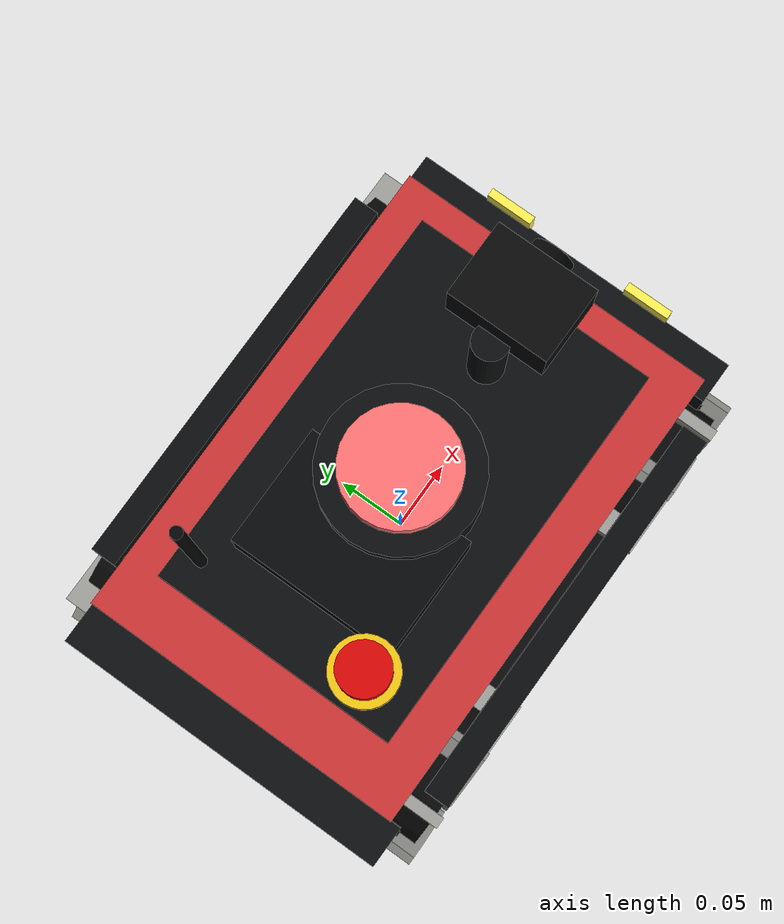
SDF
<?xml version="1.0"?>
<sdf version="1.8">
  <model name="mecanum_robot" xmlns:ignition="http://ignitionrobotics.org/schema">
    <pose>0 0 0 0 0 0</pose>

    <link name="base_link">
      <inertial>
        <pose>0 0 0.105 0 0 0</pose>
        <mass>2.2</mass>
        <inertia>
          <ixx>0.025</ixx>
          <ixy>0</ixy>
          <ixz>0</ixz>
          <iyy>0.035</iyy>
          <iyz>0</iyz>
          <izz>0.045</izz>
        </inertia>
      </inertial>

      <collision name="base_collision">
        <pose>0 0 0.105 0 0 0</pose>
        <geometry>
          <box>
            <size>0.30 0.20 0.10</size>
          </box>
        </geometry>
      </collision>

      <visual name="chassis_visual">
        <pose>0 0 0.105 0 0 0</pose>
        <geometry>
          <box>
            <size>0.34 0.23 0.09</size>
          </box>
        </geometry>
        <material>
          <ambient>0.8 0.2 0.2 1.0</ambient>
          <diffuse>0.8 0.2 0.2 1.0</diffuse>
          <specular>0.35 0.35 0.35 1.0</specular>
        </material>
      </visual>

      <visual name="top_panel_visual">
        <pose>0.015 0 0.157 0 0 0</pose>
        <geometry>
          <box>
            <size>0.23 0.145 0.018</size>
          </box>
        </geometry>
        <material>
          <ambient>1.0 0.45 0.45 1.0</ambient>
          <diffuse>1.0 0.45 0.45 1.0</diffuse>
          <specular>0.45 0.45 0.45 1.0</specular>
        </material>
      </visual>

      <visual name="lower_deck_visual">
        <pose>0 0 0.062 0 0 0</pose>
        <geometry>
          <box>
            <size>0.370 0.248 0.018</size>
          </box>
        </geometry>
        <material>
          <ambient>0.030 0.034 0.038 1.0</ambient>
          <diffuse>0.030 0.034 0.038 1.0</diffuse>
          <specular>0.35 0.35 0.35 1.0</specular>
        </material>
      </visual>

      <visual name="upper_deck_visual">
        <pose>0.005 0 0.174 0 0 0</pose>
        <geometry>
          <box>
            <size>0.275 0.172 0.014</size>
          </box>
        </geometry>
        <material>
          <ambient>0.040 0.045 0.050 1.0</ambient>
          <diffuse>0.040 0.045 0.050 1.0</diffuse>
          <specular>0.40 0.40 0.40 1.0</specular>
        </material>
      </visual>

      <visual name="front_left_standoff_visual">
        <pose>0.115 0.072 0.124 0 0 0</pose>
        <geometry>
          <cylinder>
            <radius>0.006</radius>
            <length>0.095</length>
          </cylinder>
        </geometry>
        <material>
          <ambient>0.72 0.72 0.68 1.0</ambient>
          <diffuse>0.72 0.72 0.68 1.0</diffuse>
          <specular>0.65 0.65 0.65 1.0</specular>
        </material>
      </visual>

      <visual name="front_right_standoff_visual">
        <pose>0.115 -0.072 0.124 0 0 0</pose>
        <geometry>
          <cylinder>
            <radius>0.006</radius>
            <length>0.095</length>
          </cylinder>
        </geometry>
        <material>
          <ambient>0.72 0.72 0.68 1.0</ambient>
          <diffuse>0.72 0.72 0.68 1.0</diffuse>
          <specular>0.65 0.65 0.65 1.0</specular>
        </material>
      </visual>

      <visual name="rear_left_standoff_visual">
        <pose>-0.115 0.072 0.124 0 0 0</pose>
        <geometry>
          <cylinder>
            <radius>0.006</radius>
            <length>0.095</length>
          </cylinder>
        </geometry>
        <material>
          <ambient>0.72 0.72 0.68 1.0</ambient>
          <diffuse>0.72 0.72 0.68 1.0</diffuse>
          <specular>0.65 0.65 0.65 1.0</specular>
        </material>
      </visual>

      <visual name="rear_right_standoff_visual">
        <pose>-0.115 -0.072 0.124 0 0 0</pose>
        <geometry>
          <cylinder>
            <radius>0.006</radius>
            <length>0.095</length>
          </cylinder>
        </geometry>
        <material>
          <ambient>0.72 0.72 0.68 1.0</ambient>
          <diffuse>0.72 0.72 0.68 1.0</diffuse>
          <specular>0.65 0.65 0.65 1.0</specular>
        </material>
      </visual>

      <visual name="electronics_box_visual">
        <pose>-0.050 0 0.198 0 0 0</pose>
        <geometry>
          <box>
            <size>0.082 0.116 0.034</size>
          </box>
        </geometry>
        <material>
          <ambient>0.020 0.026 0.032 1.0</ambient>
          <diffuse>0.020 0.026 0.032 1.0</diffuse>
          <specular>0.45 0.45 0.45 1.0</specular>
        </material>
      </visual>

      <visual name="battery_pack_visual">
        <pose>-0.120 0 0.088 0 0 0</pose>
        <geometry>
          <box>
            <size>0.078 0.114 0.036</size>
          </box>
        </geometry>
        <material>
          <ambient>0.020 0.055 0.095 1.0</ambient>
          <diffuse>0.020 0.055 0.095 1.0</diffuse>
          <specular>0.35 0.35 0.35 1.0</specular>
        </material>
      </visual>

      <visual name="emergency_stop_base_visual">
        <pose>-0.108 -0.052 0.221 0 0 0</pose>
        <geometry>
          <cylinder>
            <radius>0.022</radius>
            <length>0.012</length>
          </cylinder>
        </geometry>
        <material>
          <ambient>0.95 0.78 0.08 1.0</ambient>
          <diffuse>0.95 0.78 0.08 1.0</diffuse>
          <specular>0.35 0.35 0.35 1.0</specular>
        </material>
      </visual>

      <visual name="emergency_stop_button_visual">
        <pose>-0.108 -0.052 0.238 0 0 0</pose>
        <geometry>
          <cylinder>
            <radius>0.017</radius>
            <length>0.020</length>
          </cylinder>
        </geometry>
        <material>
          <ambient>0.85 0.025 0.020 1.0</ambient>
          <diffuse>0.85 0.025 0.020 1.0</diffuse>
          <specular>0.35 0.35 0.35 1.0</specular>
        </material>
      </visual>

      <visual name="front_bumper_visual">
        <pose>0.185 0 0.082 0 0 0</pose>
        <geometry>
          <box>
            <size>0.030 0.245 0.045</size>
          </box>
        </geometry>
        <material>
          <ambient>0.04 0.05 0.055 1.0</ambient>
          <diffuse>0.04 0.05 0.055 1.0</diffuse>
          <specular>0.25 0.25 0.25 1.0</specular>
        </material>
      </visual>

      <visual name="rear_bumper_visual">
        <pose>-0.185 0 0.082 0 0 0</pose>
        <geometry>
          <box>
            <size>0.030 0.245 0.045</size>
          </box>
        </geometry>
        <material>
          <ambient>0.04 0.05 0.055 1.0</ambient>
          <diffuse>0.04 0.05 0.055 1.0</diffuse>
          <specular>0.25 0.25 0.25 1.0</specular>
        </material>
      </visual>

      <visual name="left_side_rail_visual">
        <pose>0 0.130 0.105 0 0 0</pose>
        <geometry>
          <box>
            <size>0.285 0.018 0.052</size>
          </box>
        </geometry>
        <material>
          <ambient>0.035 0.04 0.045 1.0</ambient>
          <diffuse>0.035 0.04 0.045 1.0</diffuse>
        </material>
      </visual>

      <visual name="right_side_rail_visual">
        <pose>0 -0.130 0.105 0 0 0</pose>
        <geometry>
          <box>
            <size>0.285 0.018 0.052</size>
          </box>
        </geometry>
        <material>
          <ambient>0.035 0.04 0.045 1.0</ambient>
          <diffuse>0.035 0.04 0.045 1.0</diffuse>
        </material>
      </visual>

      <visual name="front_left_light_visual">
        <pose>0.202 0.055 0.105 0 0 0</pose>
        <geometry>
          <box>
            <size>0.006 0.034 0.020</size>
          </box>
        </geometry>
        <material>
          <ambient>1.0 0.95 0.32 1.0</ambient>
          <diffuse>1.0 0.95 0.32 1.0</diffuse>
          <emissive>0.65 0.55 0.10 1.0</emissive>
        </material>
      </visual>

      <visual name="front_right_light_visual">
        <pose>0.202 -0.055 0.105 0 0 0</pose>
        <geometry>
          <box>
            <size>0.006 0.034 0.020</size>
          </box>
        </geometry>
        <material>
          <ambient>1.0 0.95 0.32 1.0</ambient>
          <diffuse>1.0 0.95 0.32 1.0</diffuse>
          <emissive>0.65 0.55 0.10 1.0</emissive>
        </material>
      </visual>

      <visual name="camera_mast_visual">
        <pose>0.090 0 0.205 0 0 0</pose>
        <geometry>
          <cylinder>
            <radius>0.012</radius>
            <length>0.075</length>
          </cylinder>
        </geometry>
        <material>
          <ambient>0.04 0.045 0.05 1.0</ambient>
          <diffuse>0.04 0.045 0.05 1.0</diffuse>
        </material>
      </visual>

      <visual name="camera_body_visual">
        <pose>0.120 0 0.247 0 0 0</pose>
        <geometry>
          <box>
            <size>0.052 0.070 0.034</size>
          </box>
        </geometry>
        <material>
          <ambient>0.03 0.03 0.035 1.0</ambient>
          <diffuse>0.03 0.03 0.035 1.0</diffuse>
          <specular>0.45 0.45 0.45 1.0</specular>
        </material>
      </visual>

      <visual name="camera_lens_visual">
        <pose>0.150 0 0.247 0 1.5708 0</pose>
        <geometry>
          <cylinder>
            <radius>0.014</radius>
            <length>0.008</length>
          </cylinder>
        </geometry>
        <material>
          <ambient>0.01 0.012 0.016 1.0</ambient>
          <diffuse>0.01 0.012 0.016 1.0</diffuse>
          <specular>0.8 0.8 0.8 1.0</specular>
        </material>
      </visual>

      <visual name="antenna_visual">
        <pose>-0.110 0.070 0.235 0 0 0</pose>
        <geometry>
          <cylinder>
            <radius>0.004</radius>
            <length>0.145</length>
          </cylinder>
        </geometry>
        <material>
          <ambient>0.015 0.015 0.015 1.0</ambient>
          <diffuse>0.015 0.015 0.015 1.0</diffuse>
        </material>
      </visual>
    </link>

    <link name="base_scan">
      <inertial>
        <pose>0 0 0.205 0 0 0</pose>
        <mass>0.12</mass>
        <inertia>
          <ixx>0.0001</ixx>
          <ixy>0</ixy>
          <ixz>0</ixz>
          <iyy>0.0001</iyy>
          <iyz>0</iyz>
          <izz>0.0001</izz>
        </inertia>
      </inertial>

      <collision name="lidar_collision">
        <pose>0 0 0.205 0 0 0</pose>
        <geometry>
          <cylinder>
            <radius>0.046</radius>
            <length>0.048</length>
          </cylinder>
        </geometry>
      </collision>

      <visual name="lidar_body_visual">
        <pose>0 0 0.205 0 0 0</pose>
        <geometry>
          <cylinder>
            <radius>0.052</radius>
            <length>0.044</length>
          </cylinder>
        </geometry>
        <material>
          <ambient>0.04 0.045 0.05 1.0</ambient>
          <diffuse>0.04 0.045 0.05 1.0</diffuse>
          <specular>0.35 0.35 0.35 1.0</specular>
        </material>
      </visual>

      <visual name="lidar_top_visual">
        <pose>0 0 0.232 0 0 0</pose>
        <geometry>
          <cylinder>
            <radius>0.038</radius>
            <length>0.012</length>
          </cylinder>
        </geometry>
        <material>
          <ambient>1.0 0.45 0.45 1.0</ambient>
          <diffuse>1.0 0.45 0.45 1.0</diffuse>
          <specular>0.45 0.45 0.45 1.0</specular>
        </material>
      </visual>

      <sensor name="frontier_scan" type="gpu_lidar">
        <always_on>true</always_on>
        <visualize>false</visualize>
        <pose>0 0 0.205 0 0 0</pose>
        <update_rate>10</update_rate>
        <topic>scan</topic>
        <gz_frame_id>base_scan</gz_frame_id>
        <lidar>
          <scan>
            <horizontal>
              <samples>360</samples>
              <resolution>1.0</resolution>
              <min_angle>0.0</min_angle>
              <max_angle>6.283185</max_angle>
            </horizontal>
          </scan>
          <range>
            <min>0.10</min>
            <max>4.5</max>
            <resolution>0.015</resolution>
          </range>
          <noise>
            <type>gaussian</type>
            <mean>0.0</mean>
            <stddev>0.01</stddev>
          </noise>
        </lidar>
      </sensor>
    </link>

    <link name="imu_link">
      <sensor name="mecanum_imu" type="imu">
        <always_on>true</always_on>
        <update_rate>100</update_rate>
        <topic>imu</topic>
      </sensor>
    </link>

    <link name="front_left_wheel">
      <pose>0.120 0.118 0.055 -1.5707 0 0</pose>
      <inertial>
        <mass>0.18</mass>
        <inertia>
          <ixx>0.00018</ixx>
          <ixy>0</ixy>
          <ixz>0</ixz>
          <iyy>0.00018</iyy>
          <iyz>0</iyz>
          <izz>0.00024</izz>
        </inertia>
      </inertial>
      <collision name="wheel_collision">
        <geometry>
          <cylinder>
            <radius>0.055</radius>
            <length>0.032</length>
          </cylinder>
        </geometry>
        <surface>
          <friction>
            <ode>
              <mu>1.0</mu>
              <mu2>0.0</mu2>
              <fdir1 ignition:expressed_in="base_link">1 -1 0</fdir1>
            </ode>
          </friction>
        </surface>
      </collision>
      <visual name="wheel_visual">
        <geometry>
          <cylinder>
            <radius>0.055</radius>
            <length>0.036</length>
          </cylinder>
        </geometry>
        <material>
          <ambient>0.025 0.025 0.025 1.0</ambient>
          <diffuse>0.025 0.025 0.025 1.0</diffuse>
          <specular>0.25 0.25 0.25 1.0</specular>
        </material>
      </visual>
      <visual name="hub_visual">
        <geometry>
          <cylinder>
            <radius>0.024</radius>
            <length>0.046</length>
          </cylinder>
        </geometry>
        <material>
          <ambient>0.48 0.48 0.46 1.0</ambient>
          <diffuse>0.48 0.48 0.46 1.0</diffuse>
          <specular>0.75 0.75 0.75 1.0</specular>
        </material>
      </visual>
      <visual name="roller_0_visual">
        <pose>0.046 0.000 0 0 0 0.7854</pose>
        <geometry>
          <box>
            <size>0.050 0.008 0.046</size>
          </box>
        </geometry>
        <material>
          <ambient>0.62 0.62 0.60 1.0</ambient>
          <diffuse>0.62 0.62 0.60 1.0</diffuse>
          <specular>0.85 0.85 0.85 1.0</specular>
        </material>
      </visual>
      <visual name="roller_1_visual">
        <pose>0.033 0.033 0 0 0 1.5708</pose>
        <geometry>
          <box>
            <size>0.050 0.008 0.046</size>
          </box>
        </geometry>
        <material>
          <ambient>0.62 0.62 0.60 1.0</ambient>
          <diffuse>0.62 0.62 0.60 1.0</diffuse>
          <specular>0.85 0.85 0.85 1.0</specular>
        </material>
      </visual>
      <visual name="roller_2_visual">
        <pose>0.000 0.046 0 0 0 2.3562</pose>
        <geometry>
          <box>
            <size>0.050 0.008 0.046</size>
          </box>
        </geometry>
        <material>
          <ambient>0.62 0.62 0.60 1.0</ambient>
          <diffuse>0.62 0.62 0.60 1.0</diffuse>
          <specular>0.85 0.85 0.85 1.0</specular>
        </material>
      </visual>
      <visual name="roller_3_visual">
        <pose>-0.033 0.033 0 0 0 3.1416</pose>
        <geometry>
          <box>
            <size>0.050 0.008 0.046</size>
          </box>
        </geometry>
        <material>
          <ambient>0.62 0.62 0.60 1.0</ambient>
          <diffuse>0.62 0.62 0.60 1.0</diffuse>
          <specular>0.85 0.85 0.85 1.0</specular>
        </material>
      </visual>
      <visual name="roller_4_visual">
        <pose>-0.046 0.000 0 0 0 3.9270</pose>
        <geometry>
          <box>
            <size>0.050 0.008 0.046</size>
          </box>
        </geometry>
        <material>
          <ambient>0.62 0.62 0.60 1.0</ambient>
          <diffuse>0.62 0.62 0.60 1.0</diffuse>
          <specular>0.85 0.85 0.85 1.0</specular>
        </material>
      </visual>
      <visual name="roller_5_visual">
        <pose>-0.033 -0.033 0 0 0 4.7124</pose>
        <geometry>
          <box>
            <size>0.050 0.008 0.046</size>
          </box>
        </geometry>
        <material>
          <ambient>0.62 0.62 0.60 1.0</ambient>
          <diffuse>0.62 0.62 0.60 1.0</diffuse>
          <specular>0.85 0.85 0.85 1.0</specular>
        </material>
      </visual>
      <visual name="roller_6_visual">
        <pose>0.000 -0.046 0 0 0 5.4978</pose>
        <geometry>
          <box>
            <size>0.050 0.008 0.046</size>
          </box>
        </geometry>
        <material>
          <ambient>0.62 0.62 0.60 1.0</ambient>
          <diffuse>0.62 0.62 0.60 1.0</diffuse>
          <specular>0.85 0.85 0.85 1.0</specular>
        </material>
      </visual>
      <visual name="roller_7_visual">
        <pose>0.033 -0.033 0 0 0 6.2832</pose>
        <geometry>
          <box>
            <size>0.050 0.008 0.046</size>
          </box>
        </geometry>
        <material>
          <ambient>0.62 0.62 0.60 1.0</ambient>
          <diffuse>0.62 0.62 0.60 1.0</diffuse>
          <specular>0.85 0.85 0.85 1.0</specular>
        </material>
      </visual>
    </link>

    <link name="front_right_wheel">
      <pose>0.120 -0.118 0.055 -1.5707 0 0</pose>
      <inertial>
        <mass>0.18</mass>
        <inertia>
          <ixx>0.00018</ixx>
          <ixy>0</ixy>
          <ixz>0</ixz>
          <iyy>0.00018</iyy>
          <iyz>0</iyz>
          <izz>0.00024</izz>
        </inertia>
      </inertial>
      <collision name="wheel_collision">
        <geometry>
          <cylinder>
            <radius>0.055</radius>
            <length>0.032</length>
          </cylinder>
        </geometry>
        <surface>
          <friction>
            <ode>
              <mu>1.0</mu>
              <mu2>0.0</mu2>
              <fdir1 ignition:expressed_in="base_link">1 1 0</fdir1>
            </ode>
          </friction>
        </surface>
      </collision>
      <visual name="wheel_visual">
        <geometry>
          <cylinder>
            <radius>0.055</radius>
            <length>0.036</length>
          </cylinder>
        </geometry>
        <material>
          <ambient>0.025 0.025 0.025 1.0</ambient>
          <diffuse>0.025 0.025 0.025 1.0</diffuse>
          <specular>0.25 0.25 0.25 1.0</specular>
        </material>
      </visual>
      <visual name="hub_visual">
        <geometry>
          <cylinder>
            <radius>0.024</radius>
            <length>0.046</length>
          </cylinder>
        </geometry>
        <material>
          <ambient>0.48 0.48 0.46 1.0</ambient>
          <diffuse>0.48 0.48 0.46 1.0</diffuse>
          <specular>0.75 0.75 0.75 1.0</specular>
        </material>
      </visual>
      <visual name="roller_0_visual">
        <pose>0.046 0.000 0 0 0 -0.7854</pose>
        <geometry>
          <box>
            <size>0.050 0.008 0.046</size>
          </box>
        </geometry>
        <material>
          <ambient>0.62 0.62 0.60 1.0</ambient>
          <diffuse>0.62 0.62 0.60 1.0</diffuse>
          <specular>0.85 0.85 0.85 1.0</specular>
        </material>
      </visual>
      <visual name="roller_1_visual">
        <pose>0.033 0.033 0 0 0 0.0000</pose>
        <geometry>
          <box>
            <size>0.050 0.008 0.046</size>
          </box>
        </geometry>
        <material>
          <ambient>0.62 0.62 0.60 1.0</ambient>
          <diffuse>0.62 0.62 0.60 1.0</diffuse>
          <specular>0.85 0.85 0.85 1.0</specular>
        </material>
      </visual>
      <visual name="roller_2_visual">
        <pose>0.000 0.046 0 0 0 0.7854</pose>
        <geometry>
          <box>
            <size>0.050 0.008 0.046</size>
          </box>
        </geometry>
        <material>
          <ambient>0.62 0.62 0.60 1.0</ambient>
          <diffuse>0.62 0.62 0.60 1.0</diffuse>
          <specular>0.85 0.85 0.85 1.0</specular>
        </material>
      </visual>
      <visual name="roller_3_visual">
        <pose>-0.033 0.033 0 0 0 1.5708</pose>
        <geometry>
          <box>
            <size>0.050 0.008 0.046</size>
          </box>
        </geometry>
        <material>
          <ambient>0.62 0.62 0.60 1.0</ambient>
          <diffuse>0.62 0.62 0.60 1.0</diffuse>
          <specular>0.85 0.85 0.85 1.0</specular>
        </material>
      </visual>
      <visual name="roller_4_visual">
        <pose>-0.046 0.000 0 0 0 2.3562</pose>
        <geometry>
          <box>
            <size>0.050 0.008 0.046</size>
          </box>
        </geometry>
        <material>
          <ambient>0.62 0.62 0.60 1.0</ambient>
          <diffuse>0.62 0.62 0.60 1.0</diffuse>
          <specular>0.85 0.85 0.85 1.0</specular>
        </material>
      </visual>
      <visual name="roller_5_visual">
        <pose>-0.033 -0.033 0 0 0 3.1416</pose>
        <geometry>
          <box>
            <size>0.050 0.008 0.046</size>
          </box>
        </geometry>
        <material>
          <ambient>0.62 0.62 0.60 1.0</ambient>
          <diffuse>0.62 0.62 0.60 1.0</diffuse>
          <specular>0.85 0.85 0.85 1.0</specular>
        </material>
      </visual>
      <visual name="roller_6_visual">
        <pose>0.000 -0.046 0 0 0 3.9270</pose>
        <geometry>
          <box>
            <size>0.050 0.008 0.046</size>
          </box>
        </geometry>
        <material>
          <ambient>0.62 0.62 0.60 1.0</ambient>
          <diffuse>0.62 0.62 0.60 1.0</diffuse>
          <specular>0.85 0.85 0.85 1.0</specular>
        </material>
      </visual>
      <visual name="roller_7_visual">
        <pose>0.033 -0.033 0 0 0 4.7124</pose>
        <geometry>
          <box>
            <size>0.050 0.008 0.046</size>
          </box>
        </geometry>
        <material>
          <ambient>0.62 0.62 0.60 1.0</ambient>
          <diffuse>0.62 0.62 0.60 1.0</diffuse>
          <specular>0.85 0.85 0.85 1.0</specular>
        </material>
      </visual>
    </link>

    <link name="back_left_wheel">
      <pose>-0.120 0.118 0.055 -1.5707 0 0</pose>
      <inertial>
        <mass>0.18</mass>
        <inertia>
          <ixx>0.00018</ixx>
          <ixy>0</ixy>
          <ixz>0</ixz>
          <iyy>0.00018</iyy>
          <iyz>0</iyz>
          <izz>0.00024</izz>
        </inertia>
      </inertial>
      <collision name="wheel_collision">
        <geometry>
          <cylinder>
            <radius>0.055</radius>
            <length>0.032</length>
          </cylinder>
        </geometry>
        <surface>
          <friction>
            <ode>
              <mu>1.0</mu>
              <mu2>0.0</mu2>
              <fdir1 ignition:expressed_in="base_link">1 1 0</fdir1>
            </ode>
          </friction>
        </surface>
      </collision>
      <visual name="wheel_visual">
        <geometry>
          <cylinder>
            <radius>0.055</radius>
            <length>0.036</length>
          </cylinder>
        </geometry>
        <material>
          <ambient>0.025 0.025 0.025 1.0</ambient>
          <diffuse>0.025 0.025 0.025 1.0</diffuse>
          <specular>0.25 0.25 0.25 1.0</specular>
        </material>
      </visual>
      <visual name="hub_visual">
        <geometry>
          <cylinder>
            <radius>0.024</radius>
            <length>0.046</length>
          </cylinder>
        </geometry>
        <material>
          <ambient>0.48 0.48 0.46 1.0</ambient>
          <diffuse>0.48 0.48 0.46 1.0</diffuse>
          <specular>0.75 0.75 0.75 1.0</specular>
        </material>
      </visual>
      <visual name="roller_0_visual">
        <pose>0.046 0.000 0 0 0 -0.7854</pose>
        <geometry>
          <box>
            <size>0.050 0.008 0.046</size>
          </box>
        </geometry>
        <material>
          <ambient>0.62 0.62 0.60 1.0</ambient>
          <diffuse>0.62 0.62 0.60 1.0</diffuse>
          <specular>0.85 0.85 0.85 1.0</specular>
        </material>
      </visual>
      <visual name="roller_1_visual">
        <pose>0.033 0.033 0 0 0 0.0000</pose>
        <geometry>
          <box>
            <size>0.050 0.008 0.046</size>
          </box>
        </geometry>
        <material>
          <ambient>0.62 0.62 0.60 1.0</ambient>
          <diffuse>0.62 0.62 0.60 1.0</diffuse>
          <specular>0.85 0.85 0.85 1.0</specular>
        </material>
      </visual>
      <visual name="roller_2_visual">
        <pose>0.000 0.046 0 0 0 0.7854</pose>
        <geometry>
          <box>
            <size>0.050 0.008 0.046</size>
          </box>
        </geometry>
        <material>
          <ambient>0.62 0.62 0.60 1.0</ambient>
          <diffuse>0.62 0.62 0.60 1.0</diffuse>
          <specular>0.85 0.85 0.85 1.0</specular>
        </material>
      </visual>
      <visual name="roller_3_visual">
        <pose>-0.033 0.033 0 0 0 1.5708</pose>
        <geometry>
          <box>
            <size>0.050 0.008 0.046</size>
          </box>
        </geometry>
        <material>
          <ambient>0.62 0.62 0.60 1.0</ambient>
          <diffuse>0.62 0.62 0.60 1.0</diffuse>
          <specular>0.85 0.85 0.85 1.0</specular>
        </material>
      </visual>
      <visual name="roller_4_visual">
        <pose>-0.046 0.000 0 0 0 2.3562</pose>
        <geometry>
          <box>
            <size>0.050 0.008 0.046</size>
          </box>
        </geometry>
        <material>
          <ambient>0.62 0.62 0.60 1.0</ambient>
          <diffuse>0.62 0.62 0.60 1.0</diffuse>
          <specular>0.85 0.85 0.85 1.0</specular>
        </material>
      </visual>
      <visual name="roller_5_visual">
        <pose>-0.033 -0.033 0 0 0 3.1416</pose>
        <geometry>
          <box>
            <size>0.050 0.008 0.046</size>
          </box>
        </geometry>
        <material>
          <ambient>0.62 0.62 0.60 1.0</ambient>
          <diffuse>0.62 0.62 0.60 1.0</diffuse>
          <specular>0.85 0.85 0.85 1.0</specular>
        </material>
      </visual>
      <visual name="roller_6_visual">
        <pose>0.000 -0.046 0 0 0 3.9270</pose>
        <geometry>
          <box>
            <size>0.050 0.008 0.046</size>
          </box>
        </geometry>
        <material>
          <ambient>0.62 0.62 0.60 1.0</ambient>
          <diffuse>0.62 0.62 0.60 1.0</diffuse>
          <specular>0.85 0.85 0.85 1.0</specular>
        </material>
      </visual>
      <visual name="roller_7_visual">
        <pose>0.033 -0.033 0 0 0 4.7124</pose>
        <geometry>
          <box>
            <size>0.050 0.008 0.046</size>
          </box>
        </geometry>
        <material>
          <ambient>0.62 0.62 0.60 1.0</ambient>
          <diffuse>0.62 0.62 0.60 1.0</diffuse>
          <specular>0.85 0.85 0.85 1.0</specular>
        </material>
      </visual>
    </link>

    <link name="back_right_wheel">
      <pose>-0.120 -0.118 0.055 -1.5707 0 0</pose>
      <inertial>
        <mass>0.18</mass>
        <inertia>
          <ixx>0.00018</ixx>
          <ixy>0</ixy>
          <ixz>0</ixz>
          <iyy>0.00018</iyy>
          <iyz>0</iyz>
          <izz>0.00024</izz>
        </inertia>
      </inertial>
      <collision name="wheel_collision">
        <geometry>
          <cylinder>
            <radius>0.055</radius>
            <length>0.032</length>
          </cylinder>
        </geometry>
        <surface>
          <friction>
            <ode>
              <mu>1.0</mu>
              <mu2>0.0</mu2>
              <fdir1 ignition:expressed_in="base_link">1 -1 0</fdir1>
            </ode>
          </friction>
        </surface>
      </collision>
      <visual name="wheel_visual">
        <geometry>
          <cylinder>
            <radius>0.055</radius>
            <length>0.036</length>
          </cylinder>
        </geometry>
        <material>
          <ambient>0.025 0.025 0.025 1.0</ambient>
          <diffuse>0.025 0.025 0.025 1.0</diffuse>
          <specular>0.25 0.25 0.25 1.0</specular>
        </material>
      </visual>
      <visual name="hub_visual">
        <geometry>
          <cylinder>
            <radius>0.024</radius>
            <length>0.046</length>
          </cylinder>
        </geometry>
        <material>
          <ambient>0.48 0.48 0.46 1.0</ambient>
          <diffuse>0.48 0.48 0.46 1.0</diffuse>
          <specular>0.75 0.75 0.75 1.0</specular>
        </material>
      </visual>
      <visual name="roller_0_visual">
        <pose>0.046 0.000 0 0 0 0.7854</pose>
        <geometry>
          <box>
            <size>0.050 0.008 0.046</size>
          </box>
        </geometry>
        <material>
          <ambient>0.62 0.62 0.60 1.0</ambient>
          <diffuse>0.62 0.62 0.60 1.0</diffuse>
          <specular>0.85 0.85 0.85 1.0</specular>
        </material>
      </visual>
      <visual name="roller_1_visual">
        <pose>0.033 0.033 0 0 0 1.5708</pose>
        <geometry>
          <box>
            <size>0.050 0.008 0.046</size>
          </box>
        </geometry>
        <material>
          <ambient>0.62 0.62 0.60 1.0</ambient>
          <diffuse>0.62 0.62 0.60 1.0</diffuse>
          <specular>0.85 0.85 0.85 1.0</specular>
        </material>
      </visual>
      <visual name="roller_2_visual">
        <pose>0.000 0.046 0 0 0 2.3562</pose>
        <geometry>
          <box>
            <size>0.050 0.008 0.046</size>
          </box>
        </geometry>
        <material>
          <ambient>0.62 0.62 0.60 1.0</ambient>
          <diffuse>0.62 0.62 0.60 1.0</diffuse>
          <specular>0.85 0.85 0.85 1.0</specular>
        </material>
      </visual>
      <visual name="roller_3_visual">
        <pose>-0.033 0.033 0 0 0 3.1416</pose>
        <geometry>
          <box>
            <size>0.050 0.008 0.046</size>
          </box>
        </geometry>
        <material>
          <ambient>0.62 0.62 0.60 1.0</ambient>
          <diffuse>0.62 0.62 0.60 1.0</diffuse>
          <specular>0.85 0.85 0.85 1.0</specular>
        </material>
      </visual>
      <visual name="roller_4_visual">
        <pose>-0.046 0.000 0 0 0 3.9270</pose>
        <geometry>
          <box>
            <size>0.050 0.008 0.046</size>
          </box>
        </geometry>
        <material>
          <ambient>0.62 0.62 0.60 1.0</ambient>
          <diffuse>0.62 0.62 0.60 1.0</diffuse>
          <specular>0.85 0.85 0.85 1.0</specular>
        </material>
      </visual>
      <visual name="roller_5_visual">
        <pose>-0.033 -0.033 0 0 0 4.7124</pose>
        <geometry>
          <box>
            <size>0.050 0.008 0.046</size>
          </box>
        </geometry>
        <material>
          <ambient>0.62 0.62 0.60 1.0</ambient>
          <diffuse>0.62 0.62 0.60 1.0</diffuse>
          <specular>0.85 0.85 0.85 1.0</specular>
        </material>
      </visual>
      <visual name="roller_6_visual">
        <pose>0.000 -0.046 0 0 0 5.4978</pose>
        <geometry>
          <box>
            <size>0.050 0.008 0.046</size>
          </box>
        </geometry>
        <material>
          <ambient>0.62 0.62 0.60 1.0</ambient>
          <diffuse>0.62 0.62 0.60 1.0</diffuse>
          <specular>0.85 0.85 0.85 1.0</specular>
        </material>
      </visual>
      <visual name="roller_7_visual">
        <pose>0.033 -0.033 0 0 0 6.2832</pose>
        <geometry>
          <box>
            <size>0.050 0.008 0.046</size>
          </box>
        </geometry>
        <material>
          <ambient>0.62 0.62 0.60 1.0</ambient>
          <diffuse>0.62 0.62 0.60 1.0</diffuse>
          <specular>0.85 0.85 0.85 1.0</specular>
        </material>
      </visual>
    </link>

    <joint name="front_left_wheel_joint" type="revolute">
      <parent>base_link</parent>
      <child>front_left_wheel</child>
      <axis>
        <xyz>0 0 1</xyz>
        <limit>
          <lower>-1.79769e+308</lower>
          <upper>1.79769e+308</upper>
          <effort>20</effort>
        </limit>
      </axis>
    </joint>

    <joint name="front_right_wheel_joint" type="revolute">
      <parent>base_link</parent>
      <child>front_right_wheel</child>
      <axis>
        <xyz>0 0 1</xyz>
        <limit>
          <lower>-1.79769e+308</lower>
          <upper>1.79769e+308</upper>
          <effort>20</effort>
        </limit>
      </axis>
    </joint>

    <joint name="back_left_wheel_joint" type="revolute">
      <parent>base_link</parent>
      <child>back_left_wheel</child>
      <axis>
        <xyz>0 0 1</xyz>
        <limit>
          <lower>-1.79769e+308</lower>
          <upper>1.79769e+308</upper>
          <effort>20</effort>
        </limit>
      </axis>
    </joint>

    <joint name="back_right_wheel_joint" type="revolute">
      <parent>base_link</parent>
      <child>back_right_wheel</child>
      <axis>
        <xyz>0 0 1</xyz>
        <limit>
          <lower>-1.79769e+308</lower>
          <upper>1.79769e+308</upper>
          <effort>20</effort>
        </limit>
      </axis>
    </joint>

    <joint name="lidar_joint" type="fixed">
      <parent>base_link</parent>
      <child>base_scan</child>
    </joint>

    <joint name="imu_joint" type="fixed">
      <parent>base_link</parent>
      <child>imu_link</child>
    </joint>

    <plugin filename="ignition-gazebo-mecanum-drive-system"
            name="ignition::gazebo::systems::MecanumDrive">
      <front_left_joint>front_left_wheel_joint</front_left_joint>
      <front_right_joint>front_right_wheel_joint</front_right_joint>
      <back_left_joint>back_left_wheel_joint</back_left_joint>
      <back_right_joint>back_right_wheel_joint</back_right_joint>
      <wheel_separation>0.236</wheel_separation>
      <wheelbase>0.240</wheelbase>
      <wheel_radius>0.055</wheel_radius>
      <min_velocity>-1.0</min_velocity>
      <max_velocity>1.0</max_velocity>
      <min_acceleration>-1.5</min_acceleration>
      <max_acceleration>1.5</max_acceleration>
      <topic>cmd_vel</topic>
      <odom_topic>odom</odom_topic>
      <odom_publish_frequency>30</odom_publish_frequency>
      <tf_topic>/tf</tf_topic>
      <child_frame_id>base_link</child_frame_id>
    </plugin>

    <plugin filename="ignition-gazebo-joint-state-publisher-system"
            name="ignition::gazebo::systems::JointStatePublisher">
      <topic>joint_states</topic>
      <joint_name>front_left_wheel_joint</joint_name>
      <joint_name>front_right_wheel_joint</joint_name>
      <joint_name>back_left_wheel_joint</joint_name>
      <joint_name>back_right_wheel_joint</joint_name>
    </plugin>
  </model>
</sdf>
